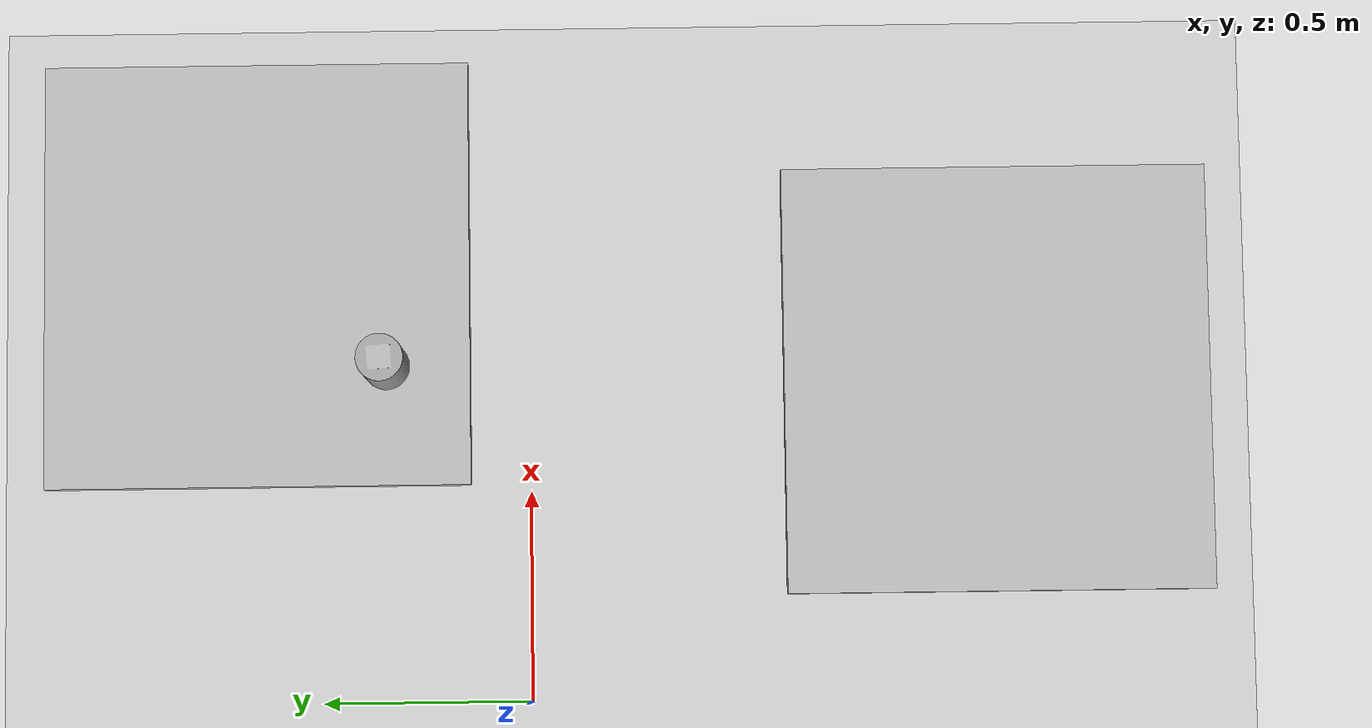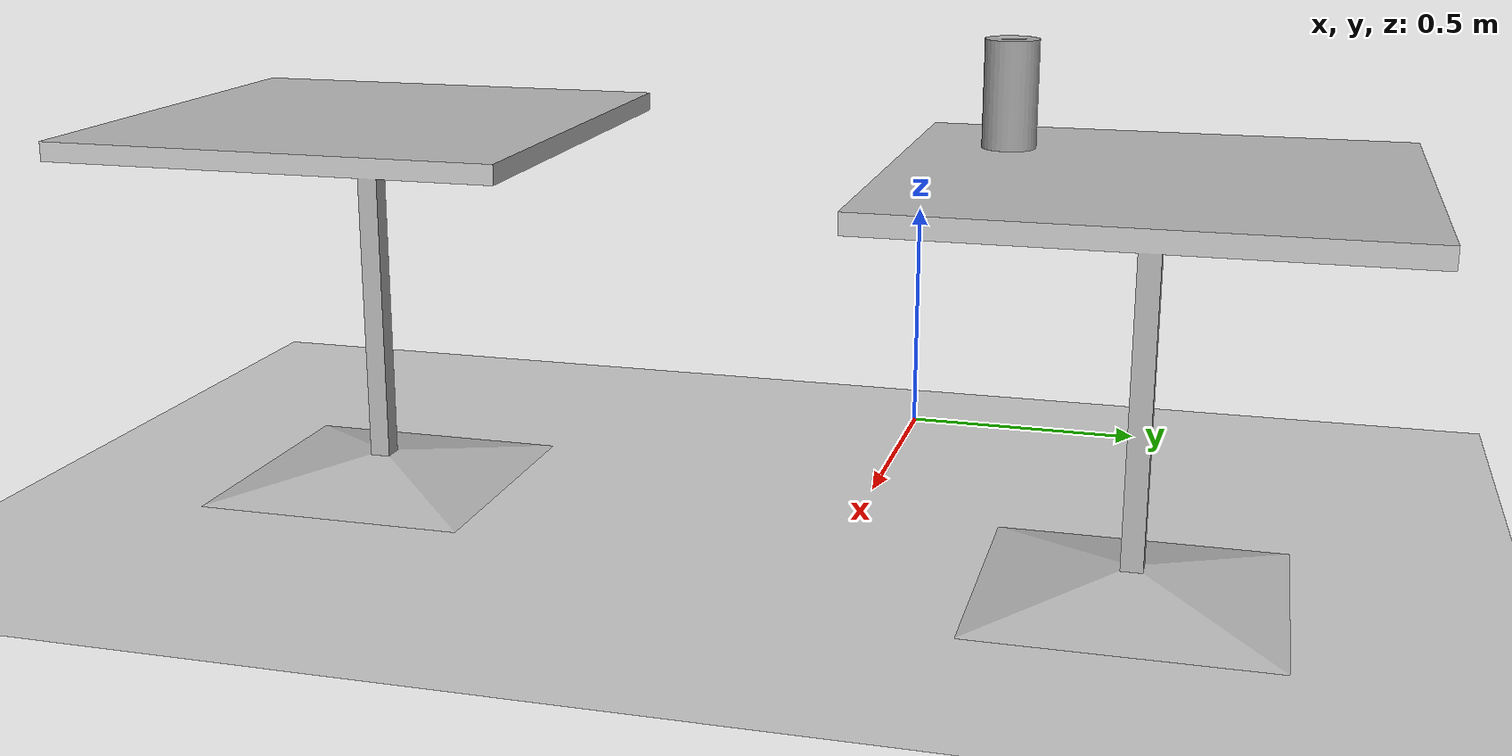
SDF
<sdf version="1.6">
 <world name="default">
  <light name="sun" type="directional">
   <pose>0 0 10 0 -0 0</pose>
   <diffuse>0.8 0.8 0.8 1</diffuse>
   <specular>0.2 0.2 0.2 1</specular>
   <attenuation>
    <range>1000</range>
    <constant>0.9</constant>
    <linear>0.01</linear>
    <quadratic>0.001</quadratic>
   </attenuation>
   <direction>-0.5 0.1 -0.9</direction>
  </light>
  <physics name="dart_2ms" default="1" type="dart">
   <max_step_size>0.002</max_step_size>
   <real_time_factor>1</real_time_factor>
   <real_time_update_rate>500</real_time_update_rate>
  </physics>
  <model name="ground_plane">
   <static>1</static>
   <link name="link">
    <collision name="collision">
     <geometry><plane><normal>0 0 1</normal><size>100 100</size></plane></geometry>
     <surface>
      <contact><collide_bitmask>65535</collide_bitmask></contact>
      <friction><ode><mu>100</mu><mu2>50</mu2></ode></friction>
     </surface>
    </collision>
    <visual name="visual">
     <cast_shadows>0</cast_shadows>
     <geometry><plane><normal>0 0 1</normal><size>100 100</size></plane></geometry>
     <material>
      <script><uri>file://media/materials/scripts/gazebo.material</uri><name>Gazebo/Grey</name></script>
     </material>
    </visual>
   </link>
  </model>
  <gravity>0 0 -9.8</gravity>
  <magnetic_field>6e-06 2.3e-05 -4.2e-05</magnetic_field>
  <atmosphere type="adiabatic"/>
  <scene><ambient>0.4 0.4 0.4 1</ambient><background>0.7 0.7 0.7 1</background><shadows>1</shadows></scene>
  <audio><device>default</device></audio>
  <spherical_coordinates>
   <surface_model>EARTH_WGS84</surface_model>
   <latitude_deg>0</latitude_deg>
   <longitude_deg>0</longitude_deg>
   <elevation>0</elevation>
   <heading_deg>0</heading_deg>
  </spherical_coordinates>
  <model name="jar_marker">
   <link name="jar_marker::link">
    <inertial>
     <mass>0.2</mass>
     <inertia><ixx>0.00079</ixx><ixy>0</ixy><ixz>0</ixz><iyy>0.00079</iyy><iyz>0</iyz><izz>0.00025</izz></inertia>
    </inertial>
    <collision name="collision">
     <geometry><mesh><uri>model://jar_marker/meshes/jar_marker.dae</uri></mesh></geometry>
     <surface>
      <friction><ode><mu>1</mu><mu2>1</mu2></ode></friction>
      <contact><ode><kp>1e+07</kp><kd>1</kd><min_depth>0.001</min_depth><max_vel>0.1</max_vel></ode></contact>
     </surface>
    </collision>
    <visual name="visual">
     <geometry><mesh><uri>model://jar_marker/meshes/jar_marker.dae</uri></mesh></geometry>
    </visual>
   </link>
   <pose>0.728714 0.284931 0.874999 2e-05 1.5e-05 0.072256</pose>
  </model>
  <model name="cafe_table">
   <static>1</static>
   <link name="link">
    <collision name="surface">
     <pose>0 0 0.755 0 -0 0</pose>
     <geometry><box><size>0.913 0.913 0.04</size></box></geometry>
    </collision>
    <collision name="column">
     <pose>0 0 0.37 0 -0 0</pose>
     <geometry><box><size>0.042 0.042 0.74</size></box></geometry>
    </collision>
    <collision name="base">
     <pose>0 0 0.02 0 -0 0</pose>
     <geometry><box><size>0.56 0.56 0.04</size></box></geometry>
    </collision>
    <visual name="visual">
     <geometry><mesh><uri>model://cafe_table/meshes/cafe_table.dae</uri></mesh></geometry>
    </visual>
   </link>
   <pose>0.688381 -1.02554 0 0 -0 0</pose>
  </model>
  <model name="cafe_table_0">
   <static>1</static>
   <link name="link">
    <collision name="surface">
     <pose>0 0 0.755 0 -0 0</pose>
     <geometry><box><size>0.913 0.913 0.04</size></box></geometry>
    </collision>
    <collision name="column">
     <pose>0 0 0.37 0 -0 0</pose>
     <geometry><box><size>0.042 0.042 0.74</size></box></geometry>
    </collision>
    <collision name="base">
     <pose>0 0 0.02 0 -0 0</pose>
     <geometry><box><size>0.56 0.56 0.04</size></box></geometry>
    </collision>
    <visual name="visual">
     <geometry><mesh><uri>model://cafe_table/meshes/cafe_table.dae</uri></mesh></geometry>
    </visual>
   </link>
   <pose>0.930749 0.563057 0 0 -0 0</pose>
  </model>
 </world>
</sdf>
